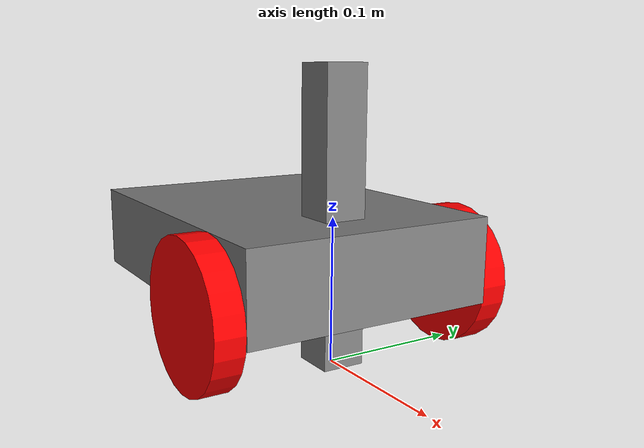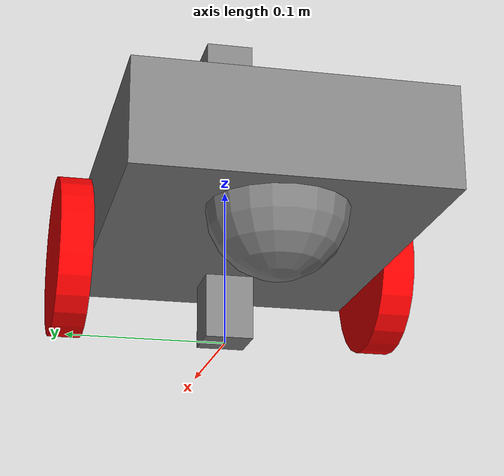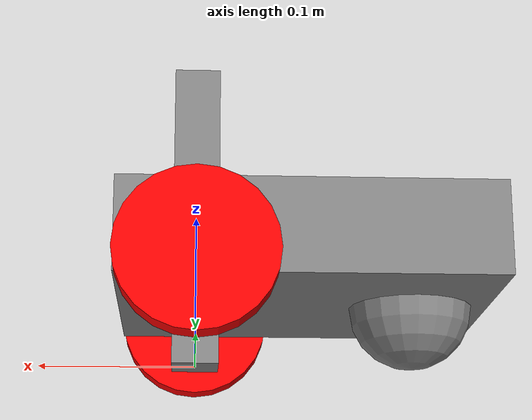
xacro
<robot name="dtw_robot" xmlns:xacro="http://ros.org/wiki/xacro">
  <material name="gray">
    <color rgba="0.5 0.5 0.5 2.5"/>
  </material>
  <material name="red">
    <color rgba="1.0 0.0 0.0 2.5"/>
  </material>

  <xacro:macro name="wheel_macro" params="parent prefix xyz">
    <joint name="${prefix}_joint" type="fixed">
      <origin xyz="${xyz}" rpy="${radians(-90)} 0 0"/>
      <parent link="${parent}"/>
      <child  link="${prefix}_link"/>
      <axis xyz="0 0 1" />
    </joint>
    <link name="${prefix}_link">
      <visual>
        <geometry>
          <cylinder radius="0.05" length="0.02" />
        </geometry>
        <material name="red"/>
      </visual>
    </link>
  </xacro:macro>

  <link name="map"/>

  <joint name="base_joint" type="floating">
    <parent link="map"/>
    <child  link="base_link"/>
  </joint>

  <link name="base_link"/>

  <joint name="body_joint" type="fixed">
    <parent link="base_link"/>
    <child  link="body_link"/>
    <origin xyz="-0.07 0 0.07" rpy="0 0 0"/>
  </joint>

  <link name="laser">
    <visual>
      <origin xyz="0 0 -0.1" rpy="0 0 0" />
      <geometry>
        <box size="0.03 0.03 0.2" />
      </geometry>
      <material name="gray" />
    </visual>
  </link>

  <joint name="laser_joint" type="fixed">
    <parent link="base_link"/>
    <child  link="laser"/>
    <origin xyz="0 0 0.2" rpy="0 0 0"/>

  </joint>

  <link name="body_link">
    <visual>
      <origin xyz="0 0 0" rpy="0 0 0" />
      <geometry>
        <box size="0.24 0.18 0.06" />
      </geometry>
      <material name="gray" />
    </visual>
  </link>

  <xacro:wheel_macro prefix="left_wheel"  parent="base_link" xyz="0 0.1 0.05"/>
  <xacro:wheel_macro prefix="right_wheel" parent="base_link" xyz="0 -0.1 0.05"/>

  <joint name="ball_joint" type="fixed">
    <parent link="base_link"/>
    <child  link="ball_link"/>
    <origin xyz="-0.14 0 0.04" rpy="0 0 0"/>
  </joint>
  <link name="ball_link">
   <visual>
     <origin xyz="0 0 0" rpy="0 0 0" />
     <geometry>
       <sphere radius="0.04" />
     </geometry>
     <material name="gray" />
   </visual>
  </link>
</robot>
